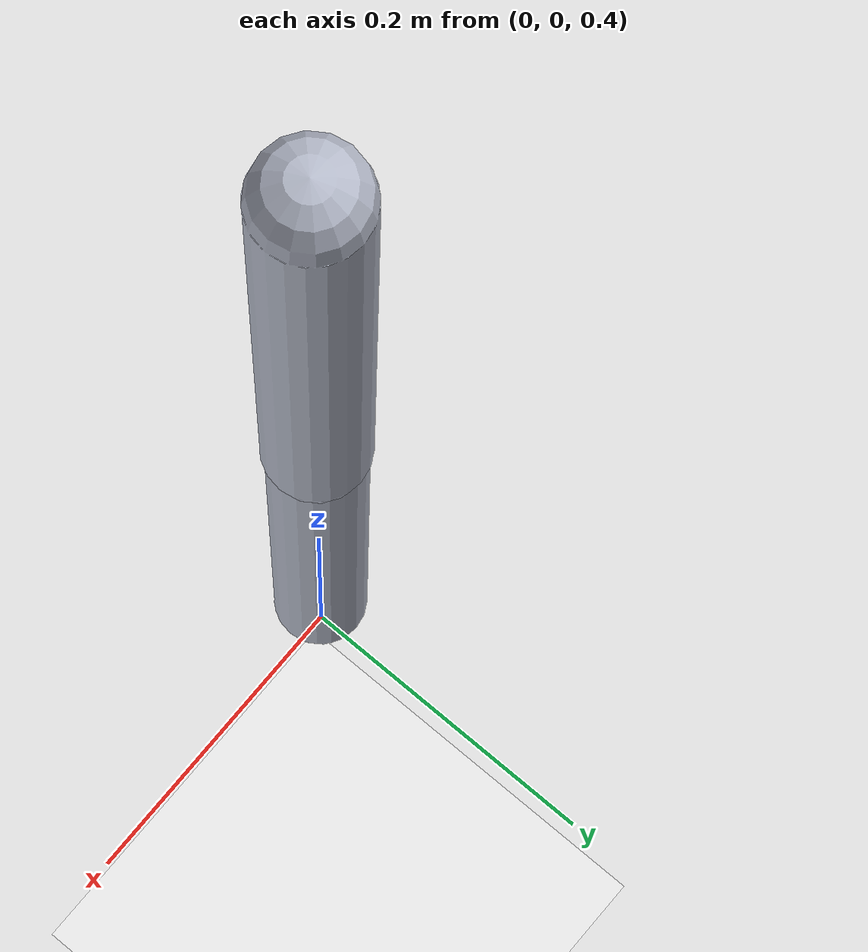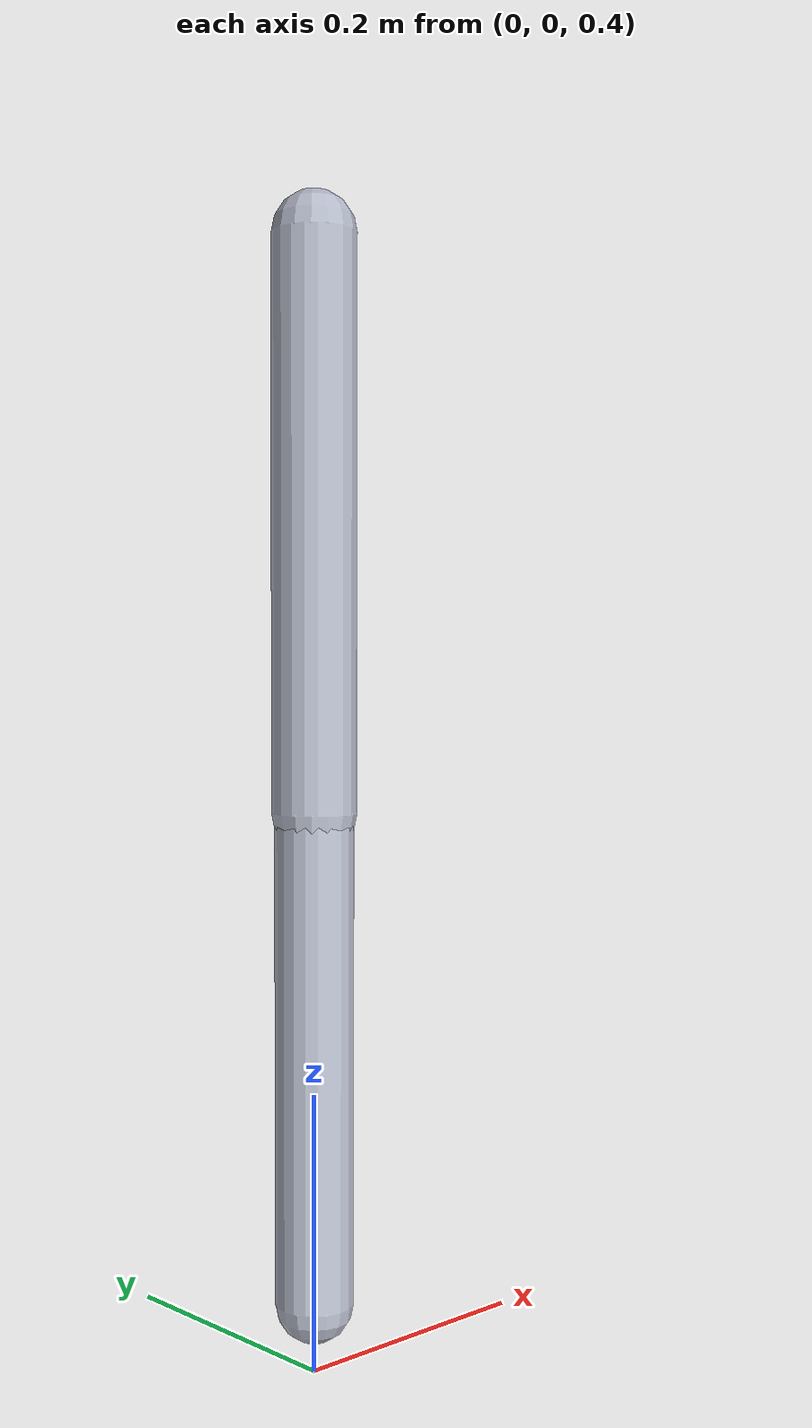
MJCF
<mujoco model="acrobot3">
  <compiler angle="radian"/>
  <option timestep="0.002" integrator="RK4" gravity="0 0 -9.81"/>

  <default>
    <!-- All hinges rotate about +Y so motion is in the X–Z plane -->
    <joint type="hinge" axis="0 1 0" limited="false" range="-1.57 1.57"
           damping="0.5" armature="0.01"/>
    <!-- Rods: capsules with density-based mass/inertia (units kg/m^3) -->
    <geom type="capsule" density="700" friction="0.4 0.01 0.01" rgba="0.70 0.72 0.78 1"/>
    <motor ctrllimited="true" ctrlrange="-3 3" gear=""/>
  </default>

  <asset>
    <!-- Optional floor material/look -->
  </asset>

  <worldbody>
    <!-- Floor (optional, infinite plane) -->
    <geom name="floor" type="plane" pos="0 0 0" size="5 5 0.1" rgba="0.9 0.9 0.9 1"/>

    <!-- Put the base high enough so rods hang without hitting the floor -->
    <body name="base" pos="0 0 1.2">
      <!-- Link 0 -->
      <body name="link0" pos="0 0 0">
        <joint name="j1"/>
        <!-- Rod pointing DOWN along -Z (length L0 = 0.40, radius r0 = 0.03) -->
        <geom name="g0" fromto="0 0 0   0 0 -0.40" size="0.03"/>
        <!-- COM marker (optional) -->
        <site name="com0" pos="0 0 -0.20" size="0.01" rgba="1 0 0 1"/>

        <!-- Link 1 attaches at the tip of link0 -->
        <body name="link1" pos="0 0 -0.40">
          <joint name="j2"/>
          <geom name="g1" fromto="0 0 0   0 0 -0.35" size="0.028"/>
          <site name="com1" pos="0 0 -0.175" size="0.01" rgba="0 1 0 1"/>

          <!-- Link 2 attaches at the tip of link1 -->
        </body>
      </body>
    </body>
  </worldbody>

  <!-- Underactuated: motorize only the distal joints (j1, j2).
       Leave j0 passive (classic acrobot style). -->
  <actuator>
    <motor name="m2" joint="j2"/>
  </actuator>
</mujoco>
